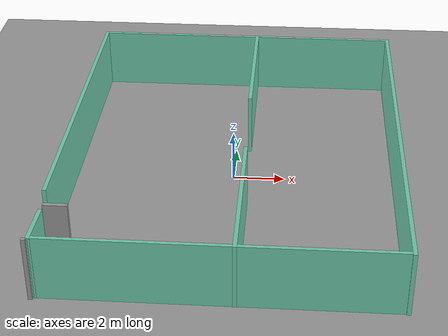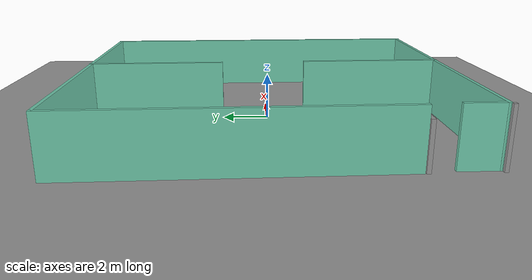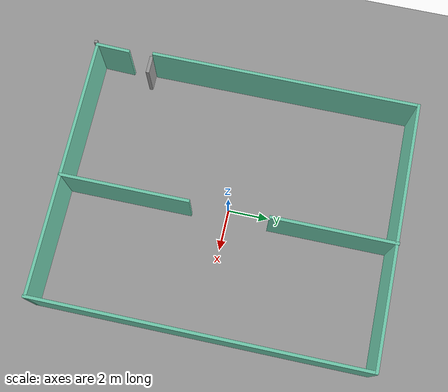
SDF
<?xml version='1.0'?>
<sdf version='1.6'>
  <model name='mybuild'>
    <link name='Door_0'>
      <pose frame=''>-5.95118 -5.22843 0 0 -0 0</pose>
      <self_collide>0</self_collide>
      <kinematic>0</kinematic>
      <visual name='Door_0_Visual'>
        <pose frame=''>0 0 1 0 -0 0</pose>
        <geometry>
          <box>
            <size>0.9 0.17 2</size>
          </box>
        </geometry>
        <material>
          <script>
            <uri>file://media/materials/scripts/gazebo.material</uri>
            <name>Gazebo/Grey</name>
          </script>
          <ambient>0.3 0.3 0.3 1</ambient>
          <diffuse>0.7 0.7 0.7 1</diffuse>
          <specular>0.01 0.01 0.01 1</specular>
          <emissive>0 0 0 1</emissive>
        </material>
        <cast_shadows>1</cast_shadows>
        <transparency>0</transparency>
      </visual>
      <collision name='Door_0_Collision'>
        <laser_retro>0</laser_retro>
        <max_contacts>10</max_contacts>
        <pose frame=''>0 0 1 0 -0 0</pose>
        <geometry>
          <box>
            <size>0.9 0.17 2</size>
          </box>
        </geometry>
        <surface>
          <friction>
            <ode>
              <mu>1</mu>
              <mu2>1</mu2>
              <fdir1>0 0 0</fdir1>
              <slip1>0</slip1>
              <slip2>0</slip2>
            </ode>
            <torsional>
              <coefficient>1</coefficient>
              <patch_radius>0</patch_radius>
              <surface_radius>0</surface_radius>
              <use_patch_radius>1</use_patch_radius>
              <ode>
                <slip>0</slip>
              </ode>
            </torsional>
          </friction>
          <bounce>
            <restitution_coefficient>0</restitution_coefficient>
            <threshold>1e+06</threshold>
          </bounce>
          <contact>
            <collide_without_contact>0</collide_without_contact>
            <collide_without_contact_bitmask>1</collide_without_contact_bitmask>
            <collide_bitmask>1</collide_bitmask>
            <ode>
              <soft_cfm>0</soft_cfm>
              <soft_erp>0.2</soft_erp>
              <kp>1e+13</kp>
              <kd>1</kd>
              <max_vel>0.01</max_vel>
              <min_depth>0</min_depth>
            </ode>
            <bullet>
              <split_impulse>1</split_impulse>
              <split_impulse_penetration_threshold>-0.01</split_impulse_penetration_threshold>
              <soft_cfm>0</soft_cfm>
              <soft_erp>0.2</soft_erp>
              <kp>1e+13</kp>
              <kd>1</kd>
            </bullet>
          </contact>
        </surface>
      </collision>
    </link>
    <link name='Wall_10'>
      <pose frame=''>-6.36085 -7.96009 0 0 -0 0</pose>
      <self_collide>0</self_collide>
      <kinematic>0</kinematic>
      <visual name='Wall_10_Visual'>
        <pose frame=''>0 0 1.25 0 -0 0</pose>
        <geometry>
          <box>
            <size>0.15 0.15 2.5</size>
          </box>
        </geometry>
        <material>
          <script>
            <uri>file://media/materials/scripts/gazebo.material</uri>
            <name>Gazebo/Grey</name>
          </script>
          <ambient>1 1 1 1</ambient>
          <diffuse>0.7 0.7 0.7 1</diffuse>
          <specular>0.01 0.01 0.01 1</specular>
          <emissive>0 0 0 1</emissive>
        </material>
        <cast_shadows>1</cast_shadows>
        <transparency>0</transparency>
      </visual>
      <collision name='Wall_10_Collision'>
        <laser_retro>0</laser_retro>
        <max_contacts>10</max_contacts>
        <pose frame=''>0 0 1.25 0 -0 0</pose>
        <geometry>
          <box>
            <size>0.15 0.15 2.5</size>
          </box>
        </geometry>
        <surface>
          <friction>
            <ode>
              <mu>1</mu>
              <mu2>1</mu2>
              <fdir1>0 0 0</fdir1>
              <slip1>0</slip1>
              <slip2>0</slip2>
            </ode>
            <torsional>
              <coefficient>1</coefficient>
              <patch_radius>0</patch_radius>
              <surface_radius>0</surface_radius>
              <use_patch_radius>1</use_patch_radius>
              <ode>
                <slip>0</slip>
              </ode>
            </torsional>
          </friction>
          <bounce>
            <restitution_coefficient>0</restitution_coefficient>
            <threshold>1e+06</threshold>
          </bounce>
          <contact>
            <collide_without_contact>0</collide_without_contact>
            <collide_without_contact_bitmask>1</collide_without_contact_bitmask>
            <collide_bitmask>1</collide_bitmask>
            <ode>
              <soft_cfm>0</soft_cfm>
              <soft_erp>0.2</soft_erp>
              <kp>1e+13</kp>
              <kd>1</kd>
              <max_vel>0.01</max_vel>
              <min_depth>0</min_depth>
            </ode>
            <bullet>
              <split_impulse>1</split_impulse>
              <split_impulse_penetration_threshold>-0.01</split_impulse_penetration_threshold>
              <soft_cfm>0</soft_cfm>
              <soft_erp>0.2</soft_erp>
              <kp>1e+13</kp>
              <kd>1</kd>
            </bullet>
          </contact>
        </surface>
      </collision>
    </link>
    <link name='Wall_36'>
      <pose frame=''>0.562167 -4.8242 0 0 0 -1.5708</pose>
      <self_collide>0</self_collide>
      <kinematic>0</kinematic>
      <visual name='Wall_36_Visual'>
        <pose frame=''>0 0 1.25 0 -0 0</pose>
        <geometry>
          <box>
            <size>6.25 0.15 2.5</size>
          </box>
        </geometry>
        <material>
          <script>
            <uri>file://media/materials/scripts/gazebo.material</uri>
            <name>Gazebo/Grey</name>
          </script>
          <ambient>0.435294 0.796078 0.67451 1</ambient>
          <diffuse>0.7 0.7 0.7 1</diffuse>
          <specular>0.01 0.01 0.01 1</specular>
          <emissive>0 0 0 1</emissive>
        </material>
        <cast_shadows>1</cast_shadows>
        <transparency>0</transparency>
      </visual>
      <collision name='Wall_36_Collision'>
        <laser_retro>0</laser_retro>
        <max_contacts>10</max_contacts>
        <pose frame=''>0 0 1.25 0 -0 0</pose>
        <geometry>
          <box>
            <size>6.25 0.15 2.5</size>
          </box>
        </geometry>
        <surface>
          <friction>
            <ode>
              <mu>1</mu>
              <mu2>1</mu2>
              <fdir1>0 0 0</fdir1>
              <slip1>0</slip1>
              <slip2>0</slip2>
            </ode>
            <torsional>
              <coefficient>1</coefficient>
              <patch_radius>0</patch_radius>
              <surface_radius>0</surface_radius>
              <use_patch_radius>1</use_patch_radius>
              <ode>
                <slip>0</slip>
              </ode>
            </torsional>
          </friction>
          <bounce>
            <restitution_coefficient>0</restitution_coefficient>
            <threshold>1e+06</threshold>
          </bounce>
          <contact>
            <collide_without_contact>0</collide_without_contact>
            <collide_without_contact_bitmask>1</collide_without_contact_bitmask>
            <collide_bitmask>1</collide_bitmask>
            <ode>
              <soft_cfm>0</soft_cfm>
              <soft_erp>0.2</soft_erp>
              <kp>1e+13</kp>
              <kd>1</kd>
              <max_vel>0.01</max_vel>
              <min_depth>0</min_depth>
            </ode>
            <bullet>
              <split_impulse>1</split_impulse>
              <split_impulse_penetration_threshold>-0.01</split_impulse_penetration_threshold>
              <soft_cfm>0</soft_cfm>
              <soft_erp>0.2</soft_erp>
              <kp>1e+13</kp>
              <kd>1</kd>
            </bullet>
          </contact>
        </surface>
      </collision>
    </link>
    <link name='Wall_40'>
      <pose frame=''>0.521712 5.03509 0 0 0 -1.5708</pose>
      <self_collide>0</self_collide>
      <kinematic>0</kinematic>
      <visual name='Wall_40_Visual'>
        <pose frame=''>0 0 1.25 0 -0 0</pose>
        <geometry>
          <box>
            <size>6 0.15 2.5</size>
          </box>
        </geometry>
        <material>
          <script>
            <uri>file://media/materials/scripts/gazebo.material</uri>
            <name>Gazebo/Grey</name>
          </script>
          <ambient>0.435294 0.796078 0.67451 1</ambient>
          <diffuse>0.7 0.7 0.7 1</diffuse>
          <specular>0.01 0.01 0.01 1</specular>
          <emissive>0 0 0 1</emissive>
        </material>
        <cast_shadows>1</cast_shadows>
        <transparency>0</transparency>
      </visual>
      <collision name='Wall_40_Collision'>
        <laser_retro>0</laser_retro>
        <max_contacts>10</max_contacts>
        <pose frame=''>0 0 1.25 0 -0 0</pose>
        <geometry>
          <box>
            <size>6 0.15 2.5</size>
          </box>
        </geometry>
        <surface>
          <friction>
            <ode>
              <mu>1</mu>
              <mu2>1</mu2>
              <fdir1>0 0 0</fdir1>
              <slip1>0</slip1>
              <slip2>0</slip2>
            </ode>
            <torsional>
              <coefficient>1</coefficient>
              <patch_radius>0</patch_radius>
              <surface_radius>0</surface_radius>
              <use_patch_radius>1</use_patch_radius>
              <ode>
                <slip>0</slip>
              </ode>
            </torsional>
          </friction>
          <bounce>
            <restitution_coefficient>0</restitution_coefficient>
            <threshold>1e+06</threshold>
          </bounce>
          <contact>
            <collide_without_contact>0</collide_without_contact>
            <collide_without_contact_bitmask>1</collide_without_contact_bitmask>
            <collide_bitmask>1</collide_bitmask>
            <ode>
              <soft_cfm>0</soft_cfm>
              <soft_erp>0.2</soft_erp>
              <kp>1e+13</kp>
              <kd>1</kd>
              <max_vel>0.01</max_vel>
              <min_depth>0</min_depth>
            </ode>
            <bullet>
              <split_impulse>1</split_impulse>
              <split_impulse_penetration_threshold>-0.01</split_impulse_penetration_threshold>
              <soft_cfm>0</soft_cfm>
              <soft_erp>0.2</soft_erp>
              <kp>1e+13</kp>
              <kd>1</kd>
            </bullet>
          </contact>
        </surface>
      </collision>
    </link>
    <link name='Wall_42'>
      <pose frame=''>-6.21653 -7.08819 0 0 0 -1.60026</pose>
      <self_collide>0</self_collide>
      <kinematic>0</kinematic>
      <visual name='Wall_42_Visual'>
        <pose frame=''>0 0 1.25 0 -0 0</pose>
        <geometry>
          <box>
            <size>1.68559 0.15 2.5</size>
          </box>
        </geometry>
        <material>
          <script>
            <uri>file://media/materials/scripts/gazebo.material</uri>
            <name>Gazebo/Grey</name>
          </script>
          <ambient>0.435294 0.796078 0.67451 1</ambient>
          <diffuse>0.7 0.7 0.7 1</diffuse>
          <specular>0.01 0.01 0.01 1</specular>
          <emissive>0 0 0 1</emissive>
        </material>
        <cast_shadows>1</cast_shadows>
        <transparency>0</transparency>
      </visual>
      <collision name='Wall_42_Collision'>
        <laser_retro>0</laser_retro>
        <max_contacts>10</max_contacts>
        <pose frame=''>0 0 1.25 0 -0 0</pose>
        <geometry>
          <box>
            <size>1.68559 0.15 2.5</size>
          </box>
        </geometry>
        <surface>
          <friction>
            <ode>
              <mu>1</mu>
              <mu2>1</mu2>
              <fdir1>0 0 0</fdir1>
              <slip1>0</slip1>
              <slip2>0</slip2>
            </ode>
            <torsional>
              <coefficient>1</coefficient>
              <patch_radius>0</patch_radius>
              <surface_radius>0</surface_radius>
              <use_patch_radius>1</use_patch_radius>
              <ode>
                <slip>0</slip>
              </ode>
            </torsional>
          </friction>
          <bounce>
            <restitution_coefficient>0</restitution_coefficient>
            <threshold>1e+06</threshold>
          </bounce>
          <contact>
            <collide_without_contact>0</collide_without_contact>
            <collide_without_contact_bitmask>1</collide_without_contact_bitmask>
            <collide_bitmask>1</collide_bitmask>
            <ode>
              <soft_cfm>0</soft_cfm>
              <soft_erp>0.2</soft_erp>
              <kp>1e+13</kp>
              <kd>1</kd>
              <max_vel>0.01</max_vel>
              <min_depth>0</min_depth>
            </ode>
            <bullet>
              <split_impulse>1</split_impulse>
              <split_impulse_penetration_threshold>-0.01</split_impulse_penetration_threshold>
              <soft_cfm>0</soft_cfm>
              <soft_erp>0.2</soft_erp>
              <kp>1e+13</kp>
              <kd>1</kd>
            </bullet>
          </contact>
        </surface>
      </collision>
    </link>
    <link name='Wall_5'>
      <pose frame=''>-6.32202 1.44463 0 0 -0 1.5708</pose>
      <self_collide>0</self_collide>
      <kinematic>0</kinematic>
      <visual name='Wall_5_Visual'>
        <pose frame=''>0 0 1.25 0 -0 0</pose>
        <geometry>
          <box>
            <size>13.1102 0.15 2.5</size>
          </box>
        </geometry>
        <material>
          <script>
            <uri>file://media/materials/scripts/gazebo.material</uri>
            <name>Gazebo/Grey</name>
          </script>
          <ambient>0.435294 0.796078 0.67451 1</ambient>
          <diffuse>0.7 0.7 0.7 1</diffuse>
          <specular>0.01 0.01 0.01 1</specular>
          <emissive>0 0 0 1</emissive>
        </material>
        <cast_shadows>1</cast_shadows>
        <transparency>0</transparency>
      </visual>
      <collision name='Wall_5_Collision'>
        <laser_retro>0</laser_retro>
        <max_contacts>10</max_contacts>
        <pose frame=''>0 0 1.25 0 -0 0</pose>
        <geometry>
          <box>
            <size>13.1102 0.15 2.5</size>
          </box>
        </geometry>
        <surface>
          <friction>
            <ode>
              <mu>1</mu>
              <mu2>1</mu2>
              <fdir1>0 0 0</fdir1>
              <slip1>0</slip1>
              <slip2>0</slip2>
            </ode>
            <torsional>
              <coefficient>1</coefficient>
              <patch_radius>0</patch_radius>
              <surface_radius>0</surface_radius>
              <use_patch_radius>1</use_patch_radius>
              <ode>
                <slip>0</slip>
              </ode>
            </torsional>
          </friction>
          <bounce>
            <restitution_coefficient>0</restitution_coefficient>
            <threshold>1e+06</threshold>
          </bounce>
          <contact>
            <collide_without_contact>0</collide_without_contact>
            <collide_without_contact_bitmask>1</collide_without_contact_bitmask>
            <collide_bitmask>1</collide_bitmask>
            <ode>
              <soft_cfm>0</soft_cfm>
              <soft_erp>0.2</soft_erp>
              <kp>1e+13</kp>
              <kd>1</kd>
              <max_vel>0.01</max_vel>
              <min_depth>0</min_depth>
            </ode>
            <bullet>
              <split_impulse>1</split_impulse>
              <split_impulse_penetration_threshold>-0.01</split_impulse_penetration_threshold>
              <soft_cfm>0</soft_cfm>
              <soft_erp>0.2</soft_erp>
              <kp>1e+13</kp>
              <kd>1</kd>
            </bullet>
          </contact>
        </surface>
      </collision>
    </link>
    <link name='Wall_6'>
      <pose frame=''>0.019411 7.92462 0 0 -0 0</pose>
      <self_collide>0</self_collide>
      <kinematic>0</kinematic>
      <visual name='Wall_6_Visual'>
        <pose frame=''>0 0 1.25 0 -0 0</pose>
        <geometry>
          <box>
            <size>12.8329 0.15 2.5</size>
          </box>
        </geometry>
        <material>
          <script>
            <uri>file://media/materials/scripts/gazebo.material</uri>
            <name>Gazebo/Grey</name>
          </script>
          <ambient>0.435294 0.796078 0.67451 1</ambient>
          <diffuse>0.7 0.7 0.7 1</diffuse>
          <specular>0.01 0.01 0.01 1</specular>
          <emissive>0 0 0 1</emissive>
        </material>
        <cast_shadows>1</cast_shadows>
        <transparency>0</transparency>
      </visual>
      <collision name='Wall_6_Collision'>
        <laser_retro>0</laser_retro>
        <max_contacts>10</max_contacts>
        <pose frame=''>0 0 1.25 0 -0 0</pose>
        <geometry>
          <box>
            <size>12.8329 0.15 2.5</size>
          </box>
        </geometry>
        <surface>
          <friction>
            <ode>
              <mu>1</mu>
              <mu2>1</mu2>
              <fdir1>0 0 0</fdir1>
              <slip1>0</slip1>
              <slip2>0</slip2>
            </ode>
            <torsional>
              <coefficient>1</coefficient>
              <patch_radius>0</patch_radius>
              <surface_radius>0</surface_radius>
              <use_patch_radius>1</use_patch_radius>
              <ode>
                <slip>0</slip>
              </ode>
            </torsional>
          </friction>
          <bounce>
            <restitution_coefficient>0</restitution_coefficient>
            <threshold>1e+06</threshold>
          </bounce>
          <contact>
            <collide_without_contact>0</collide_without_contact>
            <collide_without_contact_bitmask>1</collide_without_contact_bitmask>
            <collide_bitmask>1</collide_bitmask>
            <ode>
              <soft_cfm>0</soft_cfm>
              <soft_erp>0.2</soft_erp>
              <kp>1e+13</kp>
              <kd>1</kd>
              <max_vel>0.01</max_vel>
              <min_depth>0</min_depth>
            </ode>
            <bullet>
              <split_impulse>1</split_impulse>
              <split_impulse_penetration_threshold>-0.01</split_impulse_penetration_threshold>
              <soft_cfm>0</soft_cfm>
              <soft_erp>0.2</soft_erp>
              <kp>1e+13</kp>
              <kd>1</kd>
            </bullet>
          </contact>
        </surface>
      </collision>
    </link>
    <link name='Wall_7'>
      <pose frame=''>6.36085 0.014255 0 0 0 -1.5708</pose>
      <self_collide>0</self_collide>
      <kinematic>0</kinematic>
      <visual name='Wall_7_Visual'>
        <pose frame=''>0 0 1.25 0 -0 0</pose>
        <geometry>
          <box>
            <size>15.9709 0.15 2.5</size>
          </box>
        </geometry>
        <material>
          <script>
            <uri>file://media/materials/scripts/gazebo.material</uri>
            <name>Gazebo/Grey</name>
          </script>
          <ambient>0.435294 0.796078 0.67451 1</ambient>
          <diffuse>0.7 0.7 0.7 1</diffuse>
          <specular>0.01 0.01 0.01 1</specular>
          <emissive>0 0 0 1</emissive>
        </material>
        <cast_shadows>1</cast_shadows>
        <transparency>0</transparency>
      </visual>
      <collision name='Wall_7_Collision'>
        <laser_retro>0</laser_retro>
        <max_contacts>10</max_contacts>
        <pose frame=''>0 0 1.25 0 -0 0</pose>
        <geometry>
          <box>
            <size>15.9709 0.15 2.5</size>
          </box>
        </geometry>
        <surface>
          <friction>
            <ode>
              <mu>1</mu>
              <mu2>1</mu2>
              <fdir1>0 0 0</fdir1>
              <slip1>0</slip1>
              <slip2>0</slip2>
            </ode>
            <torsional>
              <coefficient>1</coefficient>
              <patch_radius>0</patch_radius>
              <surface_radius>0</surface_radius>
              <use_patch_radius>1</use_patch_radius>
              <ode>
                <slip>0</slip>
              </ode>
            </torsional>
          </friction>
          <bounce>
            <restitution_coefficient>0</restitution_coefficient>
            <threshold>1e+06</threshold>
          </bounce>
          <contact>
            <collide_without_contact>0</collide_without_contact>
            <collide_without_contact_bitmask>1</collide_without_contact_bitmask>
            <collide_bitmask>1</collide_bitmask>
            <ode>
              <soft_cfm>0</soft_cfm>
              <soft_erp>0.2</soft_erp>
              <kp>1e+13</kp>
              <kd>1</kd>
              <max_vel>0.01</max_vel>
              <min_depth>0</min_depth>
            </ode>
            <bullet>
              <split_impulse>1</split_impulse>
              <split_impulse_penetration_threshold>-0.01</split_impulse_penetration_threshold>
              <soft_cfm>0</soft_cfm>
              <soft_erp>0.2</soft_erp>
              <kp>1e+13</kp>
              <kd>1</kd>
            </bullet>
          </contact>
        </surface>
      </collision>
    </link>
    <link name='Wall_8'>
      <pose frame=''>0.060846 -7.85565 0 0 -0 3.14159</pose>
      <self_collide>0</self_collide>
      <kinematic>0</kinematic>
      <visual name='Wall_8_Visual'>
        <pose frame=''>0 0 1.25 0 -0 0</pose>
        <geometry>
          <box>
            <size>12.75 0.15 2.5</size>
          </box>
        </geometry>
        <material>
          <script>
            <uri>file://media/materials/scripts/gazebo.material</uri>
            <name>Gazebo/Grey</name>
          </script>
          <ambient>0.435294 0.796078 0.67451 1</ambient>
          <diffuse>0.7 0.7 0.7 1</diffuse>
          <specular>0.01 0.01 0.01 1</specular>
          <emissive>0 0 0 1</emissive>
        </material>
        <cast_shadows>1</cast_shadows>
        <transparency>0</transparency>
      </visual>
      <collision name='Wall_8_Collision'>
        <laser_retro>0</laser_retro>
        <max_contacts>10</max_contacts>
        <pose frame=''>0 0 1.25 0 -0 0</pose>
        <geometry>
          <box>
            <size>12.75 0.15 2.5</size>
          </box>
        </geometry>
        <surface>
          <friction>
            <ode>
              <mu>1</mu>
              <mu2>1</mu2>
              <fdir1>0 0 0</fdir1>
              <slip1>0</slip1>
              <slip2>0</slip2>
            </ode>
            <torsional>
              <coefficient>1</coefficient>
              <patch_radius>0</patch_radius>
              <surface_radius>0</surface_radius>
              <use_patch_radius>1</use_patch_radius>
              <ode>
                <slip>0</slip>
              </ode>
            </torsional>
          </friction>
          <bounce>
            <restitution_coefficient>0</restitution_coefficient>
            <threshold>1e+06</threshold>
          </bounce>
          <contact>
            <collide_without_contact>0</collide_without_contact>
            <collide_without_contact_bitmask>1</collide_without_contact_bitmask>
            <collide_bitmask>1</collide_bitmask>
            <ode>
              <soft_cfm>0</soft_cfm>
              <soft_erp>0.2</soft_erp>
              <kp>1e+13</kp>
              <kd>1</kd>
              <max_vel>0.01</max_vel>
              <min_depth>0</min_depth>
            </ode>
            <bullet>
              <split_impulse>1</split_impulse>
              <split_impulse_penetration_threshold>-0.01</split_impulse_penetration_threshold>
              <soft_cfm>0</soft_cfm>
              <soft_erp>0.2</soft_erp>
              <kp>1e+13</kp>
              <kd>1</kd>
            </bullet>
          </contact>
        </surface>
      </collision>
    </link>
    <model name='ground_plane'>
      <static>1</static>
      <link name='link'>
        <collision name='collision'>
          <geometry>
            <plane>
              <normal>0 0 1</normal>
              <size>100 100</size>
            </plane>
          </geometry>
          <surface>
            <friction>
              <ode>
                <mu>100</mu>
                <mu2>50</mu2>
              </ode>
            </friction>
          </surface>
        </collision>
        <visual name='visual'>
          <cast_shadows>0</cast_shadows>
          <geometry>
            <plane>
              <normal>0 0 1</normal>
              <size>100 100</size>
            </plane>
          </geometry>
          <material>
            <script>
              <uri>file://media/materials/scripts/gazebo.material</uri>
              <name>Gazebo/Grey</name>
            </script>
          </material>
        </visual>
      </link>
      <pose frame=''>-0.30157 -0.91558 0 0 -0 0</pose>
    </model>
    <static>1</static>
    <allow_auto_disable>1</allow_auto_disable>
  </model>
</sdf>
